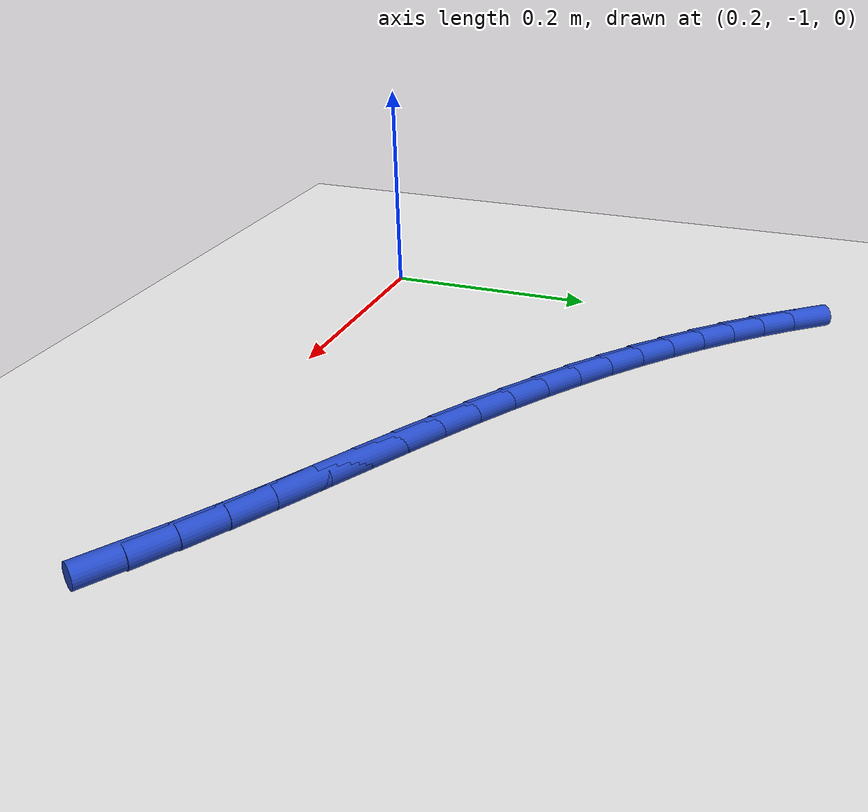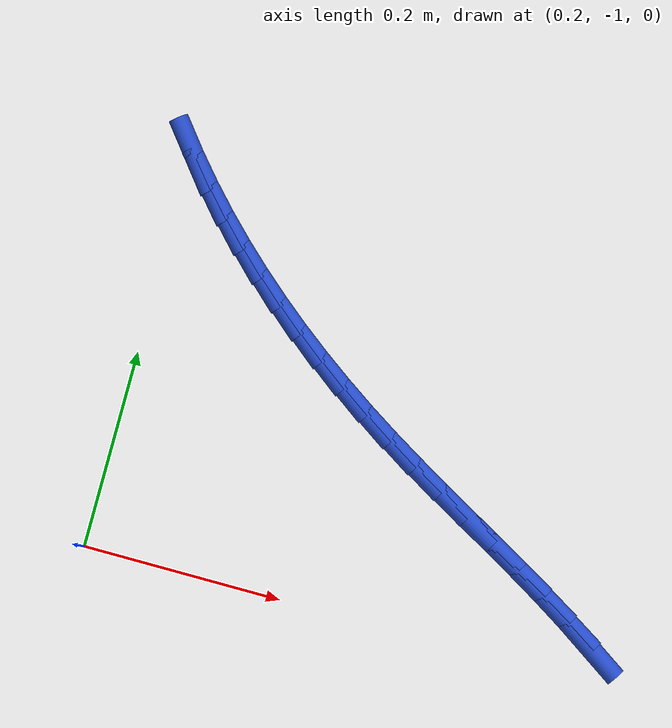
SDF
<sdf version="1.6">
 <world name="default">
  <model name="ground_plane">
   <static>1</static>
   <link name="link">
    <collision name="collision">
     <geometry><plane><normal>0 0 1</normal><size>100 100</size></plane></geometry>
     <surface><friction><ode><mu>100</mu><mu2>50</mu2></ode></friction></surface>
    </collision>
    <visual name="visual">
     <cast_shadows>0</cast_shadows>
     <geometry><plane><normal>0 0 1</normal><size>100 100</size></plane></geometry>
     <material>
      <script><uri>file://media/materials/scripts/gazebo.material</uri><name>Gazebo/WhiteGlow</name></script>
     </material>
    </visual>
   </link>
  </model>
  <model name="line">
   <link name="link_193">
    <pose>0.7071588583487327 -0.9643297845209811 0.01 0 1.57 -0.5897850375794226</pose>
    <collision name="collision">
     <geometry><cylinder><radius>0.01</radius><length>0.08</length></cylinder></geometry>
    </collision>
    <visual name="visual">
     <material>
      <script><name>Gazebo/Blue</name><uri>file://media/materials/scripts/gazebo.material</uri></script>
     </material>
     <geometry><cylinder><radius>0.01</radius><length>0.08</length></cylinder></geometry>
    </visual>
   </link>
   <link name="link_194">
    <pose>0.6781429661551872 -0.9449110623381825 0.01 0 1.57 -0.5581283341058222</pose>
    <collision name="collision">
     <geometry><cylinder><radius>0.01</radius><length>0.08</length></cylinder></geometry>
    </collision>
    <visual name="visual">
     <material>
      <script><name>Gazebo/Blue</name><uri>file://media/materials/scripts/gazebo.material</uri></script>
     </material>
     <geometry><cylinder><radius>0.01</radius><length>0.08</length></cylinder></geometry>
    </visual>
   </link>
   <link name="link_195">
    <pose>0.6481457936625626 -0.9261824706467336 0.01 0 1.57 -0.5353075131515543</pose>
    <collision name="collision">
     <geometry><cylinder><radius>0.01</radius><length>0.08</length></cylinder></geometry>
    </collision>
    <visual name="visual">
     <material>
      <script><name>Gazebo/Blue</name><uri>file://media/materials/scripts/gazebo.material</uri></script>
     </material>
     <geometry><cylinder><radius>0.01</radius><length>0.08</length></cylinder></geometry>
    </visual>
   </link>
   <link name="link_196">
    <pose>0.6174204988686538 -0.9079602539787931 0.01 0 1.57 -0.5208569506825208</pose>
    <collision name="collision">
     <geometry><cylinder><radius>0.01</radius><length>0.08</length></cylinder></geometry>
    </collision>
    <visual name="visual">
     <material>
      <script><name>Gazebo/Blue</name><uri>file://media/materials/scripts/gazebo.material</uri></script>
     </material>
     <geometry><cylinder><radius>0.01</radius><length>0.08</length></cylinder></geometry>
    </visual>
   </link>
   <link name="link_197">
    <pose>0.5862202397712553 -0.8900606568665201 0.01 0 1.57 -0.5144618094445151</pose>
    <collision name="collision">
     <geometry><cylinder><radius>0.01</radius><length>0.08</length></cylinder></geometry>
    </collision>
    <visual name="visual">
     <material>
      <script><name>Gazebo/Blue</name><uri>file://media/materials/scripts/gazebo.material</uri></script>
     </material>
     <geometry><cylinder><radius>0.01</radius><length>0.08</length></cylinder></geometry>
    </visual>
   </link>
   <link name="link_198">
    <pose>0.5547981743681628 -0.8722999238420738 0.01 0 1.57 -0.5159721767056645</pose>
    <collision name="collision">
     <geometry><cylinder><radius>0.01</radius><length>0.08</length></cylinder></geometry>
    </collision>
    <visual name="visual">
     <material>
      <script><name>Gazebo/Blue</name><uri>file://media/materials/scripts/gazebo.material</uri></script>
     </material>
     <geometry><cylinder><radius>0.01</radius><length>0.08</length></cylinder></geometry>
    </visual>
   </link>
   <link name="link_199">
    <pose>0.5234074606571706 -0.8544942994376123 0.01 0 1.57 -0.5254075180980264</pose>
    <collision name="collision">
     <geometry><cylinder><radius>0.01</radius><length>0.08</length></cylinder></geometry>
    </collision>
    <visual name="visual">
     <material>
      <script><name>Gazebo/Blue</name><uri>file://media/materials/scripts/gazebo.material</uri></script>
     </material>
     <geometry><cylinder><radius>0.01</radius><length>0.08</length></cylinder></geometry>
    </visual>
   </link>
   <link name="link_200">
    <pose>0.4923012566360734 -0.8364600281852951 0.01 0 1.57 -0.5429528385688257</pose>
    <collision name="collision">
     <geometry><cylinder><radius>0.01</radius><length>0.08</length></cylinder></geometry>
    </collision>
    <visual name="visual">
     <material>
      <script><name>Gazebo/Blue</name><uri>file://media/materials/scripts/gazebo.material</uri></script>
     </material>
     <geometry><cylinder><radius>0.01</radius><length>0.08</length></cylinder></geometry>
    </visual>
   </link>
   <link name="link_201">
    <pose>0.4617326645796226 -0.818013393200667 0.01 0 1.57 -0.5673047316089261</pose>
    <collision name="collision">
     <geometry><cylinder><radius>0.01</radius><length>0.08</length></cylinder></geometry>
    </collision>
    <visual name="visual">
     <material>
      <script><name>Gazebo/Blue</name><uri>file://media/materials/scripts/gazebo.material</uri></script>
     </material>
     <geometry><cylinder><radius>0.01</radius><length>0.08</length></cylinder></geometry>
    </visual>
   </link>
   <link name="link_202">
    <pose>0.4319028378376425 -0.7990066477360028 0.01 0 1.57 -0.594014777911557</pose>
    <collision name="collision">
     <geometry><cylinder><radius>0.01</radius><length>0.08</length></cylinder></geometry>
    </collision>
    <visual name="visual">
     <material>
      <script><name>Gazebo/Blue</name><uri>file://media/materials/scripts/gazebo.material</uri></script>
     </material>
     <geometry><cylinder><radius>0.01</radius><length>0.08</length></cylinder></geometry>
    </visual>
   </link>
   <link name="link_203">
    <pose>0.4028646886898325 -0.7793946891612052 0.01 0 1.57 -0.6222894125407717</pose>
    <collision name="collision">
     <geometry><cylinder><radius>0.01</radius><length>0.08</length></cylinder></geometry>
    </collision>
    <visual name="visual">
     <material>
      <script><name>Gazebo/Blue</name><uri>file://media/materials/scripts/gazebo.material</uri></script>
     </material>
     <geometry><cylinder><radius>0.01</radius><length>0.08</length></cylinder></geometry>
    </visual>
   </link>
   <link name="link_204">
    <pose>0.37464485959969884 -0.7591506044214487 0.01 0 1.57 -0.652140962152196</pose>
    <collision name="collision">
     <geometry><cylinder><radius>0.01</radius><length>0.08</length></cylinder></geometry>
    </collision>
    <visual name="visual">
     <material>
      <script><name>Gazebo/Blue</name><uri>file://media/materials/scripts/gazebo.material</uri></script>
     </material>
     <geometry><cylinder><radius>0.01</radius><length>0.08</length></cylinder></geometry>
    </visual>
   </link>
   <link name="link_205">
    <pose>0.3472699930307477 -0.7382474804619085 0.01 0 1.57 -0.683569294963843</pose>
    <collision name="collision">
     <geometry><cylinder><radius>0.01</radius><length>0.08</length></cylinder></geometry>
    </collision>
    <visual name="visual">
     <material>
      <script><name>Gazebo/Blue</name><uri>file://media/materials/scripts/gazebo.material</uri></script>
     </material>
     <geometry><cylinder><radius>0.01</radius><length>0.08</length></cylinder></geometry>
    </visual>
   </link>
   <link name="link_206">
    <pose>0.3207667314464849 -0.7166584042277587 0.01 0 1.57 -0.7165594451814349</pose>
    <collision name="collision">
     <geometry><cylinder><radius>0.01</radius><length>0.08</length></cylinder></geometry>
    </collision>
    <visual name="visual">
     <material>
      <script><name>Gazebo/Blue</name><uri>file://media/materials/scripts/gazebo.material</uri></script>
     </material>
     <geometry><cylinder><radius>0.01</radius><length>0.08</length></cylinder></geometry>
    </visual>
   </link>
   <link name="link_207">
    <pose>0.2951617173104182 -0.6943564626641753 0.01 0 1.57 -0.7510792676335479</pose>
    <collision name="collision">
     <geometry><cylinder><radius>0.01</radius><length>0.08</length></cylinder></geometry>
    </collision>
    <visual name="visual">
     <material>
      <script><name>Gazebo/Blue</name><uri>file://media/materials/scripts/gazebo.material</uri></script>
     </material>
     <geometry><cylinder><radius>0.01</radius><length>0.08</length></cylinder></geometry>
    </visual>
   </link>
   <link name="link_208">
    <pose>0.27048159308605296 -0.671314742716333 0.01 0 1.57 -0.7870772650934291</pose>
    <collision name="collision">
     <geometry><cylinder><radius>0.01</radius><length>0.08</length></cylinder></geometry>
    </collision>
    <visual name="visual">
     <material>
      <script><name>Gazebo/Blue</name><uri>file://media/materials/scripts/gazebo.material</uri></script>
     </material>
     <geometry><cylinder><radius>0.01</radius><length>0.08</length></cylinder></geometry>
    </visual>
   </link>
   <link name="link_209">
    <pose>0.24675300123689578 -0.6475063313294063 0.01 0 1.57 -0.8244807600078523</pose>
    <collision name="collision">
     <geometry><cylinder><radius>0.01</radius><length>0.08</length></cylinder></geometry>
    </collision>
    <visual name="visual">
     <material>
      <script><name>Gazebo/Blue</name><uri>file://media/materials/scripts/gazebo.material</uri></script>
     </material>
     <geometry><cylinder><radius>0.01</radius><length>0.08</length></cylinder></geometry>
    </visual>
   </link>
   <link name="link_210">
    <pose>0.22400258422645233 -0.62290431544857 0.01 0 1.57 -0.8631946020340098</pose>
    <collision name="collision">
     <geometry><cylinder><radius>0.01</radius><length>0.08</length></cylinder></geometry>
    </collision>
    <visual name="visual">
     <material>
      <script><name>Gazebo/Blue</name><uri>file://media/materials/scripts/gazebo.material</uri></script>
     </material>
     <geometry><cylinder><radius>0.01</radius><length>0.08</length></cylinder></geometry>
    </visual>
   </link>
   <link name="link_211">
    <pose>0.2022569845182301 -0.5974817820189997 0.01 0 1.57 -0.9031006063399265</pose>
    <collision name="collision">
     <geometry><cylinder><radius>0.01</radius><length>0.08</length></cylinder></geometry>
    </collision>
    <visual name="visual">
     <material>
      <script><name>Gazebo/Blue</name><uri>file://media/materials/scripts/gazebo.material</uri></script>
     </material>
     <geometry><cylinder><radius>0.01</radius><length>0.08</length></cylinder></geometry>
    </visual>
   </link>
  </model>
 </world>
</sdf>
